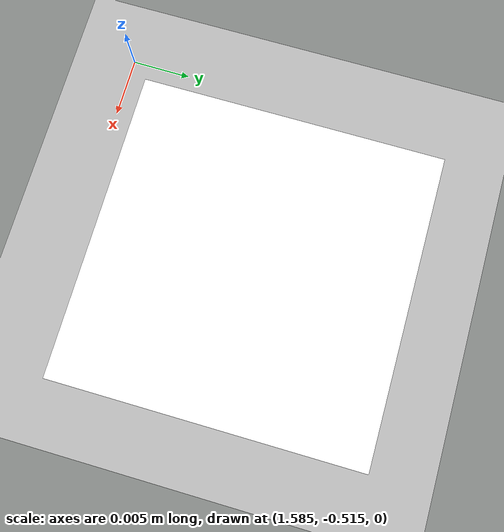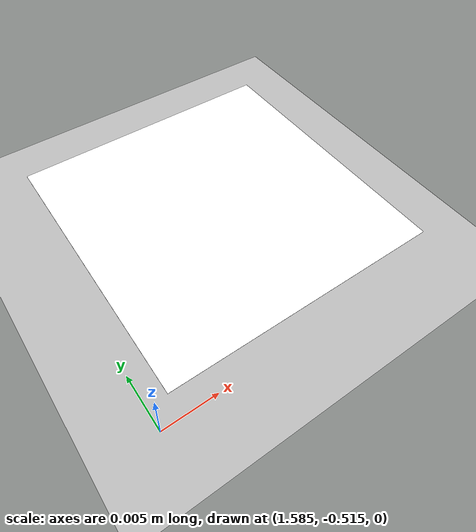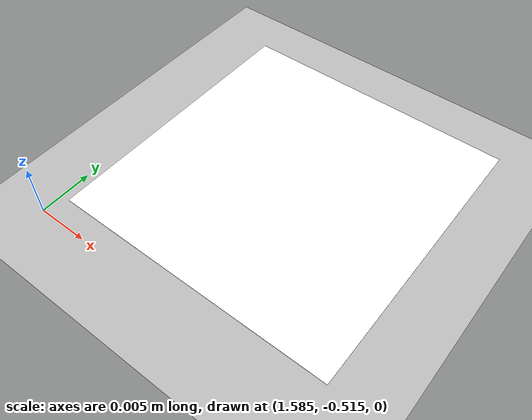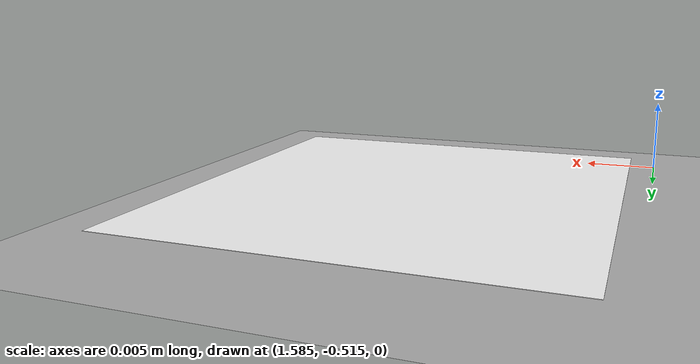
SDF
<sdf version="1.8">
 <world name="aruco_arena">
  <model name="aruco_floor_2">
   <static>true</static>
   <pose>1.6 -0.5 0.001 0 0 0</pose>
   <link name="tag">
    <visual name="white_margin">
     <geometry><plane><normal>0 0 1</normal><size>0.0266666667 0.0266666667</size></plane></geometry>
     <cast_shadows>false</cast_shadows>
     <material><ambient>1 1 1 1</ambient><diffuse>1 1 1 1</diffuse><specular>0 0 0 1</specular></material>
    </visual>
    <visual name="black_0_0">
     <pose>-0.0083333333 0.0083333333 1e-05 0 0 0</pose>
     <geometry><plane><normal>0 0 1</normal><size>0.0033333333 0.0033333333</size></plane></geometry>
     <cast_shadows>false</cast_shadows>
     <material><ambient>0 0 0 1</ambient><diffuse>0 0 0 1</diffuse><specular>0 0 0 1</specular></material>
    </visual>
    <visual name="black_0_1">
     <pose>-0.0050000000 0.0083333333 1e-05 0 0 0</pose>
     <geometry><plane><normal>0 0 1</normal><size>0.0033333333 0.0033333333</size></plane></geometry>
     <cast_shadows>false</cast_shadows>
     <material><ambient>0 0 0 1</ambient><diffuse>0 0 0 1</diffuse><specular>0 0 0 1</specular></material>
    </visual>
    <visual name="black_0_2">
     <pose>-0.0016666667 0.0083333333 1e-05 0 0 0</pose>
     <geometry><plane><normal>0 0 1</normal><size>0.0033333333 0.0033333333</size></plane></geometry>
     <cast_shadows>false</cast_shadows>
     <material><ambient>0 0 0 1</ambient><diffuse>0 0 0 1</diffuse><specular>0 0 0 1</specular></material>
    </visual>
    <visual name="black_0_3">
     <pose>0.0016666667 0.0083333333 1e-05 0 0 0</pose>
     <geometry><plane><normal>0 0 1</normal><size>0.0033333333 0.0033333333</size></plane></geometry>
     <cast_shadows>false</cast_shadows>
     <material><ambient>0 0 0 1</ambient><diffuse>0 0 0 1</diffuse><specular>0 0 0 1</specular></material>
    </visual>
    <visual name="black_0_4">
     <pose>0.0050000000 0.0083333333 1e-05 0 0 0</pose>
     <geometry><plane><normal>0 0 1</normal><size>0.0033333333 0.0033333333</size></plane></geometry>
     <cast_shadows>false</cast_shadows>
     <material><ambient>0 0 0 1</ambient><diffuse>0 0 0 1</diffuse><specular>0 0 0 1</specular></material>
    </visual>
    <visual name="black_0_5">
     <pose>0.0083333333 0.0083333333 1e-05 0 0 0</pose>
     <geometry><plane><normal>0 0 1</normal><size>0.0033333333 0.0033333333</size></plane></geometry>
     <cast_shadows>false</cast_shadows>
     <material><ambient>0 0 0 1</ambient><diffuse>0 0 0 1</diffuse><specular>0 0 0 1</specular></material>
    </visual>
    <visual name="black_1_0">
     <pose>-0.0083333333 0.0050000000 1e-05 0 0 0</pose>
     <geometry><plane><normal>0 0 1</normal><size>0.0033333333 0.0033333333</size></plane></geometry>
     <cast_shadows>false</cast_shadows>
     <material><ambient>0 0 0 1</ambient><diffuse>0 0 0 1</diffuse><specular>0 0 0 1</specular></material>
    </visual>
    <visual name="black_1_1">
     <pose>-0.0050000000 0.0050000000 1e-05 0 0 0</pose>
     <geometry><plane><normal>0 0 1</normal><size>0.0033333333 0.0033333333</size></plane></geometry>
     <cast_shadows>false</cast_shadows>
     <material><ambient>0 0 0 1</ambient><diffuse>0 0 0 1</diffuse><specular>0 0 0 1</specular></material>
    </visual>
    <visual name="black_1_2">
     <pose>-0.0016666667 0.0050000000 1e-05 0 0 0</pose>
     <geometry><plane><normal>0 0 1</normal><size>0.0033333333 0.0033333333</size></plane></geometry>
     <cast_shadows>false</cast_shadows>
     <material><ambient>0 0 0 1</ambient><diffuse>0 0 0 1</diffuse><specular>0 0 0 1</specular></material>
    </visual>
    <visual name="black_1_5">
     <pose>0.0083333333 0.0050000000 1e-05 0 0 0</pose>
     <geometry><plane><normal>0 0 1</normal><size>0.0033333333 0.0033333333</size></plane></geometry>
     <cast_shadows>false</cast_shadows>
     <material><ambient>0 0 0 1</ambient><diffuse>0 0 0 1</diffuse><specular>0 0 0 1</specular></material>
    </visual>
    <visual name="black_2_0">
     <pose>-0.0083333333 0.0016666667 1e-05 0 0 0</pose>
     <geometry><plane><normal>0 0 1</normal><size>0.0033333333 0.0033333333</size></plane></geometry>
     <cast_shadows>false</cast_shadows>
     <material><ambient>0 0 0 1</ambient><diffuse>0 0 0 1</diffuse><specular>0 0 0 1</specular></material>
    </visual>
    <visual name="black_2_1">
     <pose>-0.0050000000 0.0016666667 1e-05 0 0 0</pose>
     <geometry><plane><normal>0 0 1</normal><size>0.0033333333 0.0033333333</size></plane></geometry>
     <cast_shadows>false</cast_shadows>
     <material><ambient>0 0 0 1</ambient><diffuse>0 0 0 1</diffuse><specular>0 0 0 1</specular></material>
    </visual>
    <visual name="black_2_2">
     <pose>-0.0016666667 0.0016666667 1e-05 0 0 0</pose>
     <geometry><plane><normal>0 0 1</normal><size>0.0033333333 0.0033333333</size></plane></geometry>
     <cast_shadows>false</cast_shadows>
     <material><ambient>0 0 0 1</ambient><diffuse>0 0 0 1</diffuse><specular>0 0 0 1</specular></material>
    </visual>
    <visual name="black_2_5">
     <pose>0.0083333333 0.0016666667 1e-05 0 0 0</pose>
     <geometry><plane><normal>0 0 1</normal><size>0.0033333333 0.0033333333</size></plane></geometry>
     <cast_shadows>false</cast_shadows>
     <material><ambient>0 0 0 1</ambient><diffuse>0 0 0 1</diffuse><specular>0 0 0 1</specular></material>
    </visual>
    <visual name="black_3_0">
     <pose>-0.0083333333 -0.0016666667 1e-05 0 0 0</pose>
     <geometry><plane><normal>0 0 1</normal><size>0.0033333333 0.0033333333</size></plane></geometry>
     <cast_shadows>false</cast_shadows>
     <material><ambient>0 0 0 1</ambient><diffuse>0 0 0 1</diffuse><specular>0 0 0 1</specular></material>
    </visual>
    <visual name="black_3_1">
     <pose>-0.0050000000 -0.0016666667 1e-05 0 0 0</pose>
     <geometry><plane><normal>0 0 1</normal><size>0.0033333333 0.0033333333</size></plane></geometry>
     <cast_shadows>false</cast_shadows>
     <material><ambient>0 0 0 1</ambient><diffuse>0 0 0 1</diffuse><specular>0 0 0 1</specular></material>
    </visual>
    <visual name="black_3_2">
     <pose>-0.0016666667 -0.0016666667 1e-05 0 0 0</pose>
     <geometry><plane><normal>0 0 1</normal><size>0.0033333333 0.0033333333</size></plane></geometry>
     <cast_shadows>false</cast_shadows>
     <material><ambient>0 0 0 1</ambient><diffuse>0 0 0 1</diffuse><specular>0 0 0 1</specular></material>
    </visual>
    <visual name="black_3_4">
     <pose>0.0050000000 -0.0016666667 1e-05 0 0 0</pose>
     <geometry><plane><normal>0 0 1</normal><size>0.0033333333 0.0033333333</size></plane></geometry>
     <cast_shadows>false</cast_shadows>
     <material><ambient>0 0 0 1</ambient><diffuse>0 0 0 1</diffuse><specular>0 0 0 1</specular></material>
    </visual>
    <visual name="black_3_5">
     <pose>0.0083333333 -0.0016666667 1e-05 0 0 0</pose>
     <geometry><plane><normal>0 0 1</normal><size>0.0033333333 0.0033333333</size></plane></geometry>
     <cast_shadows>false</cast_shadows>
     <material><ambient>0 0 0 1</ambient><diffuse>0 0 0 1</diffuse><specular>0 0 0 1</specular></material>
    </visual>
    <visual name="black_4_0">
     <pose>-0.0083333333 -0.0050000000 1e-05 0 0 0</pose>
     <geometry><plane><normal>0 0 1</normal><size>0.0033333333 0.0033333333</size></plane></geometry>
     <cast_shadows>false</cast_shadows>
     <material><ambient>0 0 0 1</ambient><diffuse>0 0 0 1</diffuse><specular>0 0 0 1</specular></material>
    </visual>
    <visual name="black_4_3">
     <pose>0.0016666667 -0.0050000000 1e-05 0 0 0</pose>
     <geometry><plane><normal>0 0 1</normal><size>0.0033333333 0.0033333333</size></plane></geometry>
     <cast_shadows>false</cast_shadows>
     <material><ambient>0 0 0 1</ambient><diffuse>0 0 0 1</diffuse><specular>0 0 0 1</specular></material>
    </visual>
    <visual name="black_4_5">
     <pose>0.0083333333 -0.0050000000 1e-05 0 0 0</pose>
     <geometry><plane><normal>0 0 1</normal><size>0.0033333333 0.0033333333</size></plane></geometry>
     <cast_shadows>false</cast_shadows>
     <material><ambient>0 0 0 1</ambient><diffuse>0 0 0 1</diffuse><specular>0 0 0 1</specular></material>
    </visual>
    <visual name="black_5_0">
     <pose>-0.0083333333 -0.0083333333 1e-05 0 0 0</pose>
     <geometry><plane><normal>0 0 1</normal><size>0.0033333333 0.0033333333</size></plane></geometry>
     <cast_shadows>false</cast_shadows>
     <material><ambient>0 0 0 1</ambient><diffuse>0 0 0 1</diffuse><specular>0 0 0 1</specular></material>
    </visual>
    <visual name="black_5_1">
     <pose>-0.0050000000 -0.0083333333 1e-05 0 0 0</pose>
     <geometry><plane><normal>0 0 1</normal><size>0.0033333333 0.0033333333</size></plane></geometry>
     <cast_shadows>false</cast_shadows>
     <material><ambient>0 0 0 1</ambient><diffuse>0 0 0 1</diffuse><specular>0 0 0 1</specular></material>
    </visual>
    <visual name="black_5_2">
     <pose>-0.0016666667 -0.0083333333 1e-05 0 0 0</pose>
     <geometry><plane><normal>0 0 1</normal><size>0.0033333333 0.0033333333</size></plane></geometry>
     <cast_shadows>false</cast_shadows>
     <material><ambient>0 0 0 1</ambient><diffuse>0 0 0 1</diffuse><specular>0 0 0 1</specular></material>
    </visual>
    <visual name="black_5_3">
     <pose>0.0016666667 -0.0083333333 1e-05 0 0 0</pose>
     <geometry><plane><normal>0 0 1</normal><size>0.0033333333 0.0033333333</size></plane></geometry>
     <cast_shadows>false</cast_shadows>
     <material><ambient>0 0 0 1</ambient><diffuse>0 0 0 1</diffuse><specular>0 0 0 1</specular></material>
    </visual>
    <visual name="black_5_4">
     <pose>0.0050000000 -0.0083333333 1e-05 0 0 0</pose>
     <geometry><plane><normal>0 0 1</normal><size>0.0033333333 0.0033333333</size></plane></geometry>
     <cast_shadows>false</cast_shadows>
     <material><ambient>0 0 0 1</ambient><diffuse>0 0 0 1</diffuse><specular>0 0 0 1</specular></material>
    </visual>
    <visual name="black_5_5">
     <pose>0.0083333333 -0.0083333333 1e-05 0 0 0</pose>
     <geometry><plane><normal>0 0 1</normal><size>0.0033333333 0.0033333333</size></plane></geometry>
     <cast_shadows>false</cast_shadows>
     <material><ambient>0 0 0 1</ambient><diffuse>0 0 0 1</diffuse><specular>0 0 0 1</specular></material>
    </visual>
   </link>
  </model>
  <model name="ground_plane">
   <static>true</static>
   <link name="ground">
    <collision name="collision">
     <geometry><plane><normal>0 0 1</normal><size>100 100</size></plane></geometry>
    </collision>
    <visual name="visual">
     <geometry><plane><normal>0 0 1</normal><size>100 100</size></plane></geometry>
     <material><ambient>0.7 0.7 0.7 1</ambient><diffuse>0.7 0.7 0.7 1</diffuse></material>
    </visual>
   </link>
  </model>
 </world>
</sdf>
